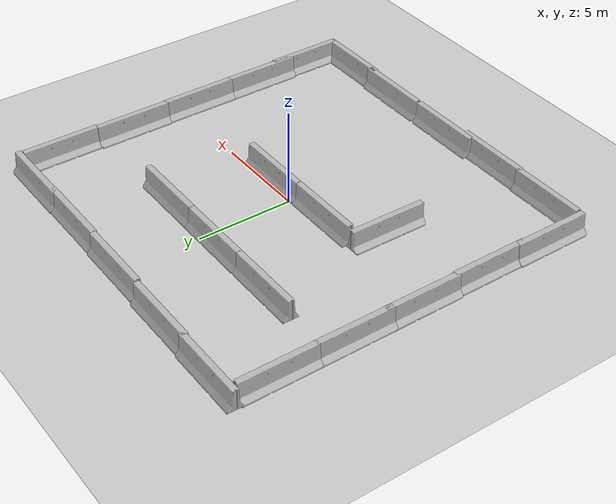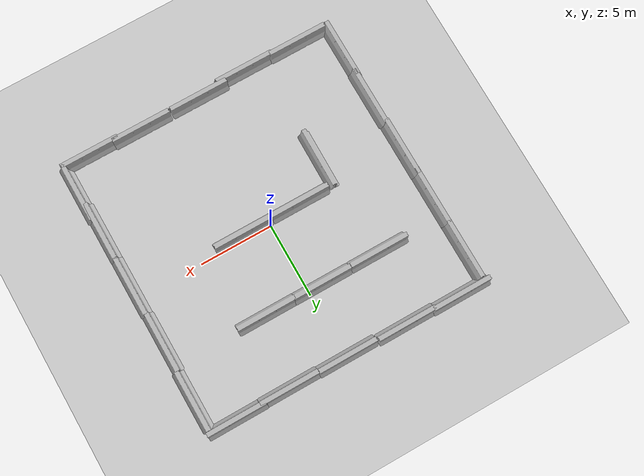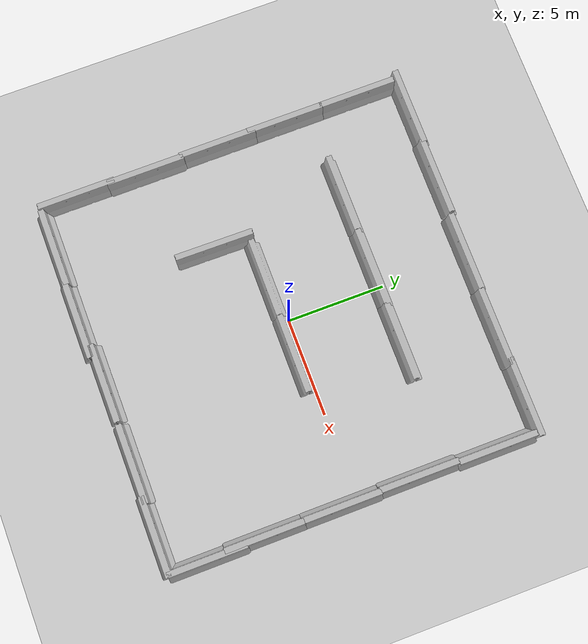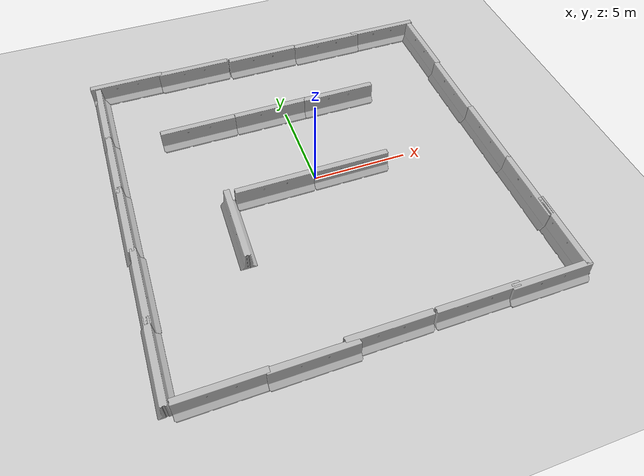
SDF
<sdf version="1.7">
 <world name="default">
  <light name="sun" type="directional">
   <pose>0 0 10 0 -0 0</pose>
   <diffuse>0.8 0.8 0.8 1</diffuse>
   <specular>0.2 0.2 0.2 1</specular>
   <attenuation>
    <range>1000</range>
    <constant>0.9</constant>
    <linear>0.01</linear>
    <quadratic>0.001</quadratic>
   </attenuation>
   <direction>-0.5 0.1 -0.9</direction>
   <spot><inner_angle>0</inner_angle><outer_angle>0</outer_angle><falloff>0</falloff></spot>
  </light>
  <model name="ground_plane">
   <static>1</static>
   <link name="link">
    <collision name="collision">
     <geometry><plane><normal>0 0 1</normal><size>100 100</size></plane></geometry>
     <surface><friction><ode><mu>100</mu><mu2>50</mu2></ode></friction></surface>
    </collision>
    <visual name="visual">
     <cast_shadows>0</cast_shadows>
     <geometry><plane><normal>0 0 1</normal><size>100 100</size></plane></geometry>
     <material>
      <script><uri>file://media/materials/scripts/gazebo.material</uri><name>Gazebo/Grey</name></script>
     </material>
    </visual>
   </link>
  </model>
  <gravity>0 0 -9.8</gravity>
  <magnetic_field>6e-06 2.3e-05 -4.2e-05</magnetic_field>
  <atmosphere type="adiabatic"/>
  <physics name="default_physics" default="0" type="ode">
   <max_step_size>0.001</max_step_size>
   <real_time_factor>1</real_time_factor>
   <real_time_update_rate>1000</real_time_update_rate>
  </physics>
  <scene><ambient>0.4 0.4 0.4 1</ambient><background>0.7 0.7 0.7 1</background><shadows>1</shadows></scene>
  <spherical_coordinates>
   <surface_model>EARTH_WGS84</surface_model>
   <latitude_deg>0</latitude_deg>
   <longitude_deg>0</longitude_deg>
   <elevation>0</elevation>
   <heading_deg>0</heading_deg>
  </spherical_coordinates>
  <model name="jersey_barrier">
   <static>1</static>
   <link name="link">
    <visual name="visual">
     <geometry><mesh><uri>model://jersey_barrier/meshes/jersey_barrier.dae</uri></mesh></geometry>
    </visual>
    <collision name="upright">
     <pose>0 0 0.5715 0 -0 0</pose>
     <geometry><box><size>4.06542 0.3063 1.143</size></box></geometry>
    </collision>
    <collision name="base">
     <pose>0 0 0.032258 0 -0 0</pose>
     <geometry><box><size>4.06542 0.8107 0.064516</size></box></geometry>
    </collision>
    <collision name="base2">
     <pose>0 0 0.1 0 -0 0</pose>
     <geometry><box><size>4.06542 0.65 0.1</size></box></geometry>
    </collision>
    <collision name="base3">
     <pose>0 0 0.2 0 -0 0</pose>
     <geometry><box><size>4.06542 0.5 0.1</size></box></geometry>
    </collision>
    <collision name="left-angle">
     <pose>0 -0.224 0.2401 0.9 -0 0</pose>
     <geometry><box><size>4.06542 0.5 0.064516</size></box></geometry>
    </collision>
    <collision name="right-angle">
     <pose>0 0.224 0.2401 -0.9 0 0</pose>
     <geometry><box><size>4.06542 0.5 0.064516</size></box></geometry>
    </collision>
   </link>
   <pose>-4.17687 9.4608 0 0 -0 0</pose>
  </model>
  <model name="jersey_barrier_clone">
   <static>1</static>
   <link name="link">
    <visual name="visual">
     <geometry><mesh><uri>model://jersey_barrier/meshes/jersey_barrier.dae</uri></mesh></geometry>
    </visual>
    <collision name="upright">
     <pose>0 0 0.5715 0 -0 0</pose>
     <geometry><box><size>4.06542 0.3063 1.143</size></box></geometry>
    </collision>
    <collision name="base">
     <pose>0 0 0.032258 0 -0 0</pose>
     <geometry><box><size>4.06542 0.8107 0.064516</size></box></geometry>
    </collision>
    <collision name="base2">
     <pose>0 0 0.1 0 -0 0</pose>
     <geometry><box><size>4.06542 0.65 0.1</size></box></geometry>
    </collision>
    <collision name="base3">
     <pose>0 0 0.2 0 -0 0</pose>
     <geometry><box><size>4.06542 0.5 0.1</size></box></geometry>
    </collision>
    <collision name="left-angle">
     <pose>0 -0.224 0.2401 0.9 -0 0</pose>
     <geometry><box><size>4.06542 0.5 0.064516</size></box></geometry>
    </collision>
    <collision name="right-angle">
     <pose>0 0.224 0.2401 -0.9 0 0</pose>
     <geometry><box><size>4.06542 0.5 0.064516</size></box></geometry>
    </collision>
   </link>
   <pose>-0.054293 9.36075 0 0 -0 0</pose>
  </model>
  <model name="jersey_barrier_clone_0">
   <static>1</static>
   <link name="link">
    <visual name="visual">
     <geometry><mesh><uri>model://jersey_barrier/meshes/jersey_barrier.dae</uri></mesh></geometry>
    </visual>
    <collision name="upright">
     <pose>0 0 0.5715 0 -0 0</pose>
     <geometry><box><size>4.06542 0.3063 1.143</size></box></geometry>
    </collision>
    <collision name="base">
     <pose>0 0 0.032258 0 -0 0</pose>
     <geometry><box><size>4.06542 0.8107 0.064516</size></box></geometry>
    </collision>
    <collision name="base2">
     <pose>0 0 0.1 0 -0 0</pose>
     <geometry><box><size>4.06542 0.65 0.1</size></box></geometry>
    </collision>
    <collision name="base3">
     <pose>0 0 0.2 0 -0 0</pose>
     <geometry><box><size>4.06542 0.5 0.1</size></box></geometry>
    </collision>
    <collision name="left-angle">
     <pose>0 -0.224 0.2401 0.9 -0 0</pose>
     <geometry><box><size>4.06542 0.5 0.064516</size></box></geometry>
    </collision>
    <collision name="right-angle">
     <pose>0 0.224 0.2401 -0.9 0 0</pose>
     <geometry><box><size>4.06542 0.5 0.064516</size></box></geometry>
    </collision>
   </link>
   <pose>3.98868 9.3074 0 0 -0 0</pose>
  </model>
  <model name="jersey_barrier_clone_1">
   <static>1</static>
   <link name="link">
    <visual name="visual">
     <geometry><mesh><uri>model://jersey_barrier/meshes/jersey_barrier.dae</uri></mesh></geometry>
    </visual>
    <collision name="upright">
     <pose>0 0 0.5715 0 -0 0</pose>
     <geometry><box><size>4.06542 0.3063 1.143</size></box></geometry>
    </collision>
    <collision name="base">
     <pose>0 0 0.032258 0 -0 0</pose>
     <geometry><box><size>4.06542 0.8107 0.064516</size></box></geometry>
    </collision>
    <collision name="base2">
     <pose>0 0 0.1 0 -0 0</pose>
     <geometry><box><size>4.06542 0.65 0.1</size></box></geometry>
    </collision>
    <collision name="base3">
     <pose>0 0 0.2 0 -0 0</pose>
     <geometry><box><size>4.06542 0.5 0.1</size></box></geometry>
    </collision>
    <collision name="left-angle">
     <pose>0 -0.224 0.2401 0.9 -0 0</pose>
     <geometry><box><size>4.06542 0.5 0.064516</size></box></geometry>
    </collision>
    <collision name="right-angle">
     <pose>0 0.224 0.2401 -0.9 0 0</pose>
     <geometry><box><size>4.06542 0.5 0.064516</size></box></geometry>
    </collision>
   </link>
   <pose>7.6423 9.33993 0 0 -0 0</pose>
  </model>
  <model name="jersey_barrier_clone_3">
   <static>1</static>
   <link name="link">
    <visual name="visual">
     <geometry><mesh><uri>model://jersey_barrier/meshes/jersey_barrier.dae</uri></mesh></geometry>
    </visual>
    <collision name="upright">
     <pose>0 0 0.5715 0 -0 0</pose>
     <geometry><box><size>4.06542 0.3063 1.143</size></box></geometry>
    </collision>
    <collision name="base">
     <pose>0 0 0.032258 0 -0 0</pose>
     <geometry><box><size>4.06542 0.8107 0.064516</size></box></geometry>
    </collision>
    <collision name="base2">
     <pose>0 0 0.1 0 -0 0</pose>
     <geometry><box><size>4.06542 0.65 0.1</size></box></geometry>
    </collision>
    <collision name="base3">
     <pose>0 0 0.2 0 -0 0</pose>
     <geometry><box><size>4.06542 0.5 0.1</size></box></geometry>
    </collision>
    <collision name="left-angle">
     <pose>0 -0.224 0.2401 0.9 -0 0</pose>
     <geometry><box><size>4.06542 0.5 0.064516</size></box></geometry>
    </collision>
    <collision name="right-angle">
     <pose>0 0.224 0.2401 -0.9 0 0</pose>
     <geometry><box><size>4.06542 0.5 0.064516</size></box></geometry>
    </collision>
   </link>
   <pose>9.4427 7.15625 0 0 0 -1.56865</pose>
  </model>
  <model name="jersey_barrier_clone_3_clone">
   <static>1</static>
   <link name="link">
    <visual name="visual">
     <geometry><mesh><uri>model://jersey_barrier/meshes/jersey_barrier.dae</uri></mesh></geometry>
    </visual>
    <collision name="upright">
     <pose>0 0 0.5715 0 -0 0</pose>
     <geometry><box><size>4.06542 0.3063 1.143</size></box></geometry>
    </collision>
    <collision name="base">
     <pose>0 0 0.032258 0 -0 0</pose>
     <geometry><box><size>4.06542 0.8107 0.064516</size></box></geometry>
    </collision>
    <collision name="base2">
     <pose>0 0 0.1 0 -0 0</pose>
     <geometry><box><size>4.06542 0.65 0.1</size></box></geometry>
    </collision>
    <collision name="base3">
     <pose>0 0 0.2 0 -0 0</pose>
     <geometry><box><size>4.06542 0.5 0.1</size></box></geometry>
    </collision>
    <collision name="left-angle">
     <pose>0 -0.224 0.2401 0.9 -0 0</pose>
     <geometry><box><size>4.06542 0.5 0.064516</size></box></geometry>
    </collision>
    <collision name="right-angle">
     <pose>0 0.224 0.2401 -0.9 0 0</pose>
     <geometry><box><size>4.06542 0.5 0.064516</size></box></geometry>
    </collision>
   </link>
   <pose>9.36884 3.13056 0 0 0 -1.56865</pose>
  </model>
  <model name="jersey_barrier_clone_3_clone_0">
   <static>1</static>
   <link name="link">
    <visual name="visual">
     <geometry><mesh><uri>model://jersey_barrier/meshes/jersey_barrier.dae</uri></mesh></geometry>
    </visual>
    <collision name="upright">
     <pose>0 0 0.5715 0 -0 0</pose>
     <geometry><box><size>4.06542 0.3063 1.143</size></box></geometry>
    </collision>
    <collision name="base">
     <pose>0 0 0.032258 0 -0 0</pose>
     <geometry><box><size>4.06542 0.8107 0.064516</size></box></geometry>
    </collision>
    <collision name="base2">
     <pose>0 0 0.1 0 -0 0</pose>
     <geometry><box><size>4.06542 0.65 0.1</size></box></geometry>
    </collision>
    <collision name="base3">
     <pose>0 0 0.2 0 -0 0</pose>
     <geometry><box><size>4.06542 0.5 0.1</size></box></geometry>
    </collision>
    <collision name="left-angle">
     <pose>0 -0.224 0.2401 0.9 -0 0</pose>
     <geometry><box><size>4.06542 0.5 0.064516</size></box></geometry>
    </collision>
    <collision name="right-angle">
     <pose>0 0.224 0.2401 -0.9 0 0</pose>
     <geometry><box><size>4.06542 0.5 0.064516</size></box></geometry>
    </collision>
   </link>
   <pose>9.42767 -0.84043 0 0 0 -1.56865</pose>
  </model>
  <model name="jersey_barrier_clone_3_clone_1">
   <static>1</static>
   <link name="link">
    <visual name="visual">
     <geometry><mesh><uri>model://jersey_barrier/meshes/jersey_barrier.dae</uri></mesh></geometry>
    </visual>
    <collision name="upright">
     <pose>0 0 0.5715 0 -0 0</pose>
     <geometry><box><size>4.06542 0.3063 1.143</size></box></geometry>
    </collision>
    <collision name="base">
     <pose>0 0 0.032258 0 -0 0</pose>
     <geometry><box><size>4.06542 0.8107 0.064516</size></box></geometry>
    </collision>
    <collision name="base2">
     <pose>0 0 0.1 0 -0 0</pose>
     <geometry><box><size>4.06542 0.65 0.1</size></box></geometry>
    </collision>
    <collision name="base3">
     <pose>0 0 0.2 0 -0 0</pose>
     <geometry><box><size>4.06542 0.5 0.1</size></box></geometry>
    </collision>
    <collision name="left-angle">
     <pose>0 -0.224 0.2401 0.9 -0 0</pose>
     <geometry><box><size>4.06542 0.5 0.064516</size></box></geometry>
    </collision>
    <collision name="right-angle">
     <pose>0 0.224 0.2401 -0.9 0 0</pose>
     <geometry><box><size>4.06542 0.5 0.064516</size></box></geometry>
    </collision>
   </link>
   <pose>9.44587 -4.75641 0 0 0 -1.56865</pose>
  </model>
  <model name="jersey_barrier_clone_2_clone">
   <static>1</static>
   <link name="link">
    <visual name="visual">
     <geometry><mesh><uri>model://jersey_barrier/meshes/jersey_barrier.dae</uri></mesh></geometry>
    </visual>
    <collision name="upright">
     <pose>0 0 0.5715 0 -0 0</pose>
     <geometry><box><size>4.06542 0.3063 1.143</size></box></geometry>
    </collision>
    <collision name="base">
     <pose>0 0 0.032258 0 -0 0</pose>
     <geometry><box><size>4.06542 0.8107 0.064516</size></box></geometry>
    </collision>
    <collision name="base2">
     <pose>0 0 0.1 0 -0 0</pose>
     <geometry><box><size>4.06542 0.65 0.1</size></box></geometry>
    </collision>
    <collision name="base3">
     <pose>0 0 0.2 0 -0 0</pose>
     <geometry><box><size>4.06542 0.5 0.1</size></box></geometry>
    </collision>
    <collision name="left-angle">
     <pose>0 -0.224 0.2401 0.9 -0 0</pose>
     <geometry><box><size>4.06542 0.5 0.064516</size></box></geometry>
    </collision>
    <collision name="right-angle">
     <pose>0 0.224 0.2401 -0.9 0 0</pose>
     <geometry><box><size>4.06542 0.5 0.064516</size></box></geometry>
    </collision>
   </link>
   <pose>7.66714 -9.59835 0 0 -0 0</pose>
  </model>
  <model name="jersey_barrier_clone_2_clone_0">
   <static>1</static>
   <link name="link">
    <visual name="visual">
     <geometry><mesh><uri>model://jersey_barrier/meshes/jersey_barrier.dae</uri></mesh></geometry>
    </visual>
    <collision name="upright">
     <pose>0 0 0.5715 0 -0 0</pose>
     <geometry><box><size>4.06542 0.3063 1.143</size></box></geometry>
    </collision>
    <collision name="base">
     <pose>0 0 0.032258 0 -0 0</pose>
     <geometry><box><size>4.06542 0.8107 0.064516</size></box></geometry>
    </collision>
    <collision name="base2">
     <pose>0 0 0.1 0 -0 0</pose>
     <geometry><box><size>4.06542 0.65 0.1</size></box></geometry>
    </collision>
    <collision name="base3">
     <pose>0 0 0.2 0 -0 0</pose>
     <geometry><box><size>4.06542 0.5 0.1</size></box></geometry>
    </collision>
    <collision name="left-angle">
     <pose>0 -0.224 0.2401 0.9 -0 0</pose>
     <geometry><box><size>4.06542 0.5 0.064516</size></box></geometry>
    </collision>
    <collision name="right-angle">
     <pose>0 0.224 0.2401 -0.9 0 0</pose>
     <geometry><box><size>4.06542 0.5 0.064516</size></box></geometry>
    </collision>
   </link>
   <pose>4.06577 -9.50928 0 0 -0 0</pose>
  </model>
  <model name="jersey_barrier_clone_2_clone_1">
   <static>1</static>
   <link name="link">
    <visual name="visual">
     <geometry><mesh><uri>model://jersey_barrier/meshes/jersey_barrier.dae</uri></mesh></geometry>
    </visual>
    <collision name="upright">
     <pose>0 0 0.5715 0 -0 0</pose>
     <geometry><box><size>4.06542 0.3063 1.143</size></box></geometry>
    </collision>
    <collision name="base">
     <pose>0 0 0.032258 0 -0 0</pose>
     <geometry><box><size>4.06542 0.8107 0.064516</size></box></geometry>
    </collision>
    <collision name="base2">
     <pose>0 0 0.1 0 -0 0</pose>
     <geometry><box><size>4.06542 0.65 0.1</size></box></geometry>
    </collision>
    <collision name="base3">
     <pose>0 0 0.2 0 -0 0</pose>
     <geometry><box><size>4.06542 0.5 0.1</size></box></geometry>
    </collision>
    <collision name="left-angle">
     <pose>0 -0.224 0.2401 0.9 -0 0</pose>
     <geometry><box><size>4.06542 0.5 0.064516</size></box></geometry>
    </collision>
    <collision name="right-angle">
     <pose>0 0.224 0.2401 -0.9 0 0</pose>
     <geometry><box><size>4.06542 0.5 0.064516</size></box></geometry>
    </collision>
   </link>
   <pose>-0.076635 -9.50852 0 0 -0 0</pose>
  </model>
  <model name="jersey_barrier_clone_2_clone_2">
   <static>1</static>
   <link name="link">
    <visual name="visual">
     <geometry><mesh><uri>model://jersey_barrier/meshes/jersey_barrier.dae</uri></mesh></geometry>
    </visual>
    <collision name="upright">
     <pose>0 0 0.5715 0 -0 0</pose>
     <geometry><box><size>4.06542 0.3063 1.143</size></box></geometry>
    </collision>
    <collision name="base">
     <pose>0 0 0.032258 0 -0 0</pose>
     <geometry><box><size>4.06542 0.8107 0.064516</size></box></geometry>
    </collision>
    <collision name="base2">
     <pose>0 0 0.1 0 -0 0</pose>
     <geometry><box><size>4.06542 0.65 0.1</size></box></geometry>
    </collision>
    <collision name="base3">
     <pose>0 0 0.2 0 -0 0</pose>
     <geometry><box><size>4.06542 0.5 0.1</size></box></geometry>
    </collision>
    <collision name="left-angle">
     <pose>0 -0.224 0.2401 0.9 -0 0</pose>
     <geometry><box><size>4.06542 0.5 0.064516</size></box></geometry>
    </collision>
    <collision name="right-angle">
     <pose>0 0.224 0.2401 -0.9 0 0</pose>
     <geometry><box><size>4.06542 0.5 0.064516</size></box></geometry>
    </collision>
   </link>
   <pose>-7.34735 -9.65079 0 0 -0 0</pose>
  </model>
  <model name="jersey_barrier_clone_3_clone_1_clone">
   <static>1</static>
   <link name="link">
    <visual name="visual">
     <geometry><mesh><uri>model://jersey_barrier/meshes/jersey_barrier.dae</uri></mesh></geometry>
    </visual>
    <collision name="upright">
     <pose>0 0 0.5715 0 -0 0</pose>
     <geometry><box><size>4.06542 0.3063 1.143</size></box></geometry>
    </collision>
    <collision name="base">
     <pose>0 0 0.032258 0 -0 0</pose>
     <geometry><box><size>4.06542 0.8107 0.064516</size></box></geometry>
    </collision>
    <collision name="base2">
     <pose>0 0 0.1 0 -0 0</pose>
     <geometry><box><size>4.06542 0.65 0.1</size></box></geometry>
    </collision>
    <collision name="base3">
     <pose>0 0 0.2 0 -0 0</pose>
     <geometry><box><size>4.06542 0.5 0.1</size></box></geometry>
    </collision>
    <collision name="left-angle">
     <pose>0 -0.224 0.2401 0.9 -0 0</pose>
     <geometry><box><size>4.06542 0.5 0.064516</size></box></geometry>
    </collision>
    <collision name="right-angle">
     <pose>0 0.224 0.2401 -0.9 0 0</pose>
     <geometry><box><size>4.06542 0.5 0.064516</size></box></geometry>
    </collision>
   </link>
   <pose>-9.54768 -4.10101 0 0 0 -1.56865</pose>
  </model>
  <model name="jersey_barrier_clone_3_clone_1_clone_0">
   <static>1</static>
   <link name="link">
    <visual name="visual">
     <geometry><mesh><uri>model://jersey_barrier/meshes/jersey_barrier.dae</uri></mesh></geometry>
    </visual>
    <collision name="upright">
     <pose>0 0 0.5715 0 -0 0</pose>
     <geometry><box><size>4.06542 0.3063 1.143</size></box></geometry>
    </collision>
    <collision name="base">
     <pose>0 0 0.032258 0 -0 0</pose>
     <geometry><box><size>4.06542 0.8107 0.064516</size></box></geometry>
    </collision>
    <collision name="base2">
     <pose>0 0 0.1 0 -0 0</pose>
     <geometry><box><size>4.06542 0.65 0.1</size></box></geometry>
    </collision>
    <collision name="base3">
     <pose>0 0 0.2 0 -0 0</pose>
     <geometry><box><size>4.06542 0.5 0.1</size></box></geometry>
    </collision>
    <collision name="left-angle">
     <pose>0 -0.224 0.2401 0.9 -0 0</pose>
     <geometry><box><size>4.06542 0.5 0.064516</size></box></geometry>
    </collision>
    <collision name="right-angle">
     <pose>0 0.224 0.2401 -0.9 0 0</pose>
     <geometry><box><size>4.06542 0.5 0.064516</size></box></geometry>
    </collision>
   </link>
   <pose>-9.62664 -0.240383 0 0 0 -1.56865</pose>
  </model>
  <model name="jersey_barrier_clone_3_clone_1_clone_1">
   <static>1</static>
   <link name="link">
    <visual name="visual">
     <geometry><mesh><uri>model://jersey_barrier/meshes/jersey_barrier.dae</uri></mesh></geometry>
    </visual>
    <collision name="upright">
     <pose>0 0 0.5715 0 -0 0</pose>
     <geometry><box><size>4.06542 0.3063 1.143</size></box></geometry>
    </collision>
    <collision name="base">
     <pose>0 0 0.032258 0 -0 0</pose>
     <geometry><box><size>4.06542 0.8107 0.064516</size></box></geometry>
    </collision>
    <collision name="base2">
     <pose>0 0 0.1 0 -0 0</pose>
     <geometry><box><size>4.06542 0.65 0.1</size></box></geometry>
    </collision>
    <collision name="base3">
     <pose>0 0 0.2 0 -0 0</pose>
     <geometry><box><size>4.06542 0.5 0.1</size></box></geometry>
    </collision>
    <collision name="left-angle">
     <pose>0 -0.224 0.2401 0.9 -0 0</pose>
     <geometry><box><size>4.06542 0.5 0.064516</size></box></geometry>
    </collision>
    <collision name="right-angle">
     <pose>0 0.224 0.2401 -0.9 0 0</pose>
     <geometry><box><size>4.06542 0.5 0.064516</size></box></geometry>
    </collision>
   </link>
   <pose>-9.64604 3.37731 0 0 0 -1.56865</pose>
  </model>
  <model name="jersey_barrier_clone_3_clone_1_clone_2">
   <static>1</static>
   <link name="link">
    <visual name="visual">
     <geometry><mesh><uri>model://jersey_barrier/meshes/jersey_barrier.dae</uri></mesh></geometry>
    </visual>
    <collision name="upright">
     <pose>0 0 0.5715 0 -0 0</pose>
     <geometry><box><size>4.06542 0.3063 1.143</size></box></geometry>
    </collision>
    <collision name="base">
     <pose>0 0 0.032258 0 -0 0</pose>
     <geometry><box><size>4.06542 0.8107 0.064516</size></box></geometry>
    </collision>
    <collision name="base2">
     <pose>0 0 0.1 0 -0 0</pose>
     <geometry><box><size>4.06542 0.65 0.1</size></box></geometry>
    </collision>
    <collision name="base3">
     <pose>0 0 0.2 0 -0 0</pose>
     <geometry><box><size>4.06542 0.5 0.1</size></box></geometry>
    </collision>
    <collision name="left-angle">
     <pose>0 -0.224 0.2401 0.9 -0 0</pose>
     <geometry><box><size>4.06542 0.5 0.064516</size></box></geometry>
    </collision>
    <collision name="right-angle">
     <pose>0 0.224 0.2401 -0.9 0 0</pose>
     <geometry><box><size>4.06542 0.5 0.064516</size></box></geometry>
    </collision>
   </link>
   <pose>-9.65968 7.27215 0 0 0 -1.56865</pose>
  </model>
  <model name="jersey_barrier_0">
   <static>1</static>
   <link name="link">
    <visual name="visual">
     <geometry><mesh><uri>model://jersey_barrier/meshes/jersey_barrier.dae</uri></mesh></geometry>
    </visual>
    <collision name="upright">
     <pose>0 0 0.5715 0 -0 0</pose>
     <geometry><box><size>4.06542 0.3063 1.143</size></box></geometry>
    </collision>
    <collision name="base">
     <pose>0 0 0.032258 0 -0 0</pose>
     <geometry><box><size>4.06542 0.8107 0.064516</size></box></geometry>
    </collision>
    <collision name="base2">
     <pose>0 0 0.1 0 -0 0</pose>
     <geometry><box><size>4.06542 0.65 0.1</size></box></geometry>
    </collision>
    <collision name="base3">
     <pose>0 0 0.2 0 -0 0</pose>
     <geometry><box><size>4.06542 0.5 0.1</size></box></geometry>
    </collision>
    <collision name="left-angle">
     <pose>0 -0.224 0.2401 0.9 -0 0</pose>
     <geometry><box><size>4.06542 0.5 0.064516</size></box></geometry>
    </collision>
    <collision name="right-angle">
     <pose>0 0.224 0.2401 -0.9 0 0</pose>
     <geometry><box><size>4.06542 0.5 0.064516</size></box></geometry>
    </collision>
   </link>
   <pose>-4.97429 4.73074 0 0 -0 0</pose>
  </model>
  <model name="jersey_barrier_0_clone">
   <static>1</static>
   <link name="link">
    <visual name="visual">
     <geometry><mesh><uri>model://jersey_barrier/meshes/jersey_barrier.dae</uri></mesh></geometry>
    </visual>
    <collision name="upright">
     <pose>0 0 0.5715 0 -0 0</pose>
     <geometry><box><size>4.06542 0.3063 1.143</size></box></geometry>
    </collision>
    <collision name="base">
     <pose>0 0 0.032258 0 -0 0</pose>
     <geometry><box><size>4.06542 0.8107 0.064516</size></box></geometry>
    </collision>
    <collision name="base2">
     <pose>0 0 0.1 0 -0 0</pose>
     <geometry><box><size>4.06542 0.65 0.1</size></box></geometry>
    </collision>
    <collision name="base3">
     <pose>0 0 0.2 0 -0 0</pose>
     <geometry><box><size>4.06542 0.5 0.1</size></box></geometry>
    </collision>
    <collision name="left-angle">
     <pose>0 -0.224 0.2401 0.9 -0 0</pose>
     <geometry><box><size>4.06542 0.5 0.064516</size></box></geometry>
    </collision>
    <collision name="right-angle">
     <pose>0 0.224 0.2401 -0.9 0 0</pose>
     <geometry><box><size>4.06542 0.5 0.064516</size></box></geometry>
    </collision>
   </link>
   <pose>-0.93635 4.73131 0 0 -0 0</pose>
  </model>
  <model name="jersey_barrier_0_clone_0">
   <static>1</static>
   <link name="link">
    <visual name="visual">
     <geometry><mesh><uri>model://jersey_barrier/meshes/jersey_barrier.dae</uri></mesh></geometry>
    </visual>
    <collision name="upright">
     <pose>0 0 0.5715 0 -0 0</pose>
     <geometry><box><size>4.06542 0.3063 1.143</size></box></geometry>
    </collision>
    <collision name="base">
     <pose>0 0 0.032258 0 -0 0</pose>
     <geometry><box><size>4.06542 0.8107 0.064516</size></box></geometry>
    </collision>
    <collision name="base2">
     <pose>0 0 0.1 0 -0 0</pose>
     <geometry><box><size>4.06542 0.65 0.1</size></box></geometry>
    </collision>
    <collision name="base3">
     <pose>0 0 0.2 0 -0 0</pose>
     <geometry><box><size>4.06542 0.5 0.1</size></box></geometry>
    </collision>
    <collision name="left-angle">
     <pose>0 -0.224 0.2401 0.9 -0 0</pose>
     <geometry><box><size>4.06542 0.5 0.064516</size></box></geometry>
    </collision>
    <collision name="right-angle">
     <pose>0 0.224 0.2401 -0.9 0 0</pose>
     <geometry><box><size>4.06542 0.5 0.064516</size></box></geometry>
    </collision>
   </link>
   <pose>2.99134 4.7208 0 0 -0 0</pose>
  </model>
  <model name="jersey_barrier_0_clone_1">
   <static>1</static>
   <link name="link">
    <visual name="visual">
     <geometry><mesh><uri>model://jersey_barrier/meshes/jersey_barrier.dae</uri></mesh></geometry>
    </visual>
    <collision name="upright">
     <pose>0 0 0.5715 0 -0 0</pose>
     <geometry><box><size>4.06542 0.3063 1.143</size></box></geometry>
    </collision>
    <collision name="base">
     <pose>0 0 0.032258 0 -0 0</pose>
     <geometry><box><size>4.06542 0.8107 0.064516</size></box></geometry>
    </collision>
    <collision name="base2">
     <pose>0 0 0.1 0 -0 0</pose>
     <geometry><box><size>4.06542 0.65 0.1</size></box></geometry>
    </collision>
    <collision name="base3">
     <pose>0 0 0.2 0 -0 0</pose>
     <geometry><box><size>4.06542 0.5 0.1</size></box></geometry>
    </collision>
    <collision name="left-angle">
     <pose>0 -0.224 0.2401 0.9 -0 0</pose>
     <geometry><box><size>4.06542 0.5 0.064516</size></box></geometry>
    </collision>
    <collision name="right-angle">
     <pose>0 0.224 0.2401 -0.9 0 0</pose>
     <geometry><box><size>4.06542 0.5 0.064516</size></box></geometry>
    </collision>
   </link>
   <pose>-2.28125 -0.396276 0 0 -0 0</pose>
  </model>
  <model name="jersey_barrier_0_clone_1_clone">
   <static>1</static>
   <link name="link">
    <visual name="visual">
     <geometry><mesh><uri>model://jersey_barrier/meshes/jersey_barrier.dae</uri></mesh></geometry>
    </visual>
    <collision name="upright">
     <pose>0 0 0.5715 0 -0 0</pose>
     <geometry><box><size>4.06542 0.3063 1.143</size></box></geometry>
    </collision>
    <collision name="base">
     <pose>0 0 0.032258 0 -0 0</pose>
     <geometry><box><size>4.06542 0.8107 0.064516</size></box></geometry>
    </collision>
    <collision name="base2">
     <pose>0 0 0.1 0 -0 0</pose>
     <geometry><box><size>4.06542 0.65 0.1</size></box></geometry>
    </collision>
    <collision name="base3">
     <pose>0 0 0.2 0 -0 0</pose>
     <geometry><box><size>4.06542 0.5 0.1</size></box></geometry>
    </collision>
    <collision name="left-angle">
     <pose>0 -0.224 0.2401 0.9 -0 0</pose>
     <geometry><box><size>4.06542 0.5 0.064516</size></box></geometry>
    </collision>
    <collision name="right-angle">
     <pose>0 0.224 0.2401 -0.9 0 0</pose>
     <geometry><box><size>4.06542 0.5 0.064516</size></box></geometry>
    </collision>
   </link>
   <pose>1.76519 -0.393386 0 0 -0 0</pose>
  </model>
  <model name="jersey_barrier_0_clone_1_clone_clone">
   <static>1</static>
   <link name="link">
    <visual name="visual">
     <geometry><mesh><uri>model://jersey_barrier/meshes/jersey_barrier.dae</uri></mesh></geometry>
    </visual>
    <collision name="upright">
     <pose>0 0 0.5715 0 -0 0</pose>
     <geometry><box><size>4.06542 0.3063 1.143</size></box></geometry>
    </collision>
    <collision name="base">
     <pose>0 0 0.032258 0 -0 0</pose>
     <geometry><box><size>4.06542 0.8107 0.064516</size></box></geometry>
    </collision>
    <collision name="base2">
     <pose>0 0 0.1 0 -0 0</pose>
     <geometry><box><size>4.06542 0.65 0.1</size></box></geometry>
    </collision>
    <collision name="base3">
     <pose>0 0 0.2 0 -0 0</pose>
     <geometry><box><size>4.06542 0.5 0.1</size></box></geometry>
    </collision>
    <collision name="left-angle">
     <pose>0 -0.224 0.2401 0.9 -0 0</pose>
     <geometry><box><size>4.06542 0.5 0.064516</size></box></geometry>
    </collision>
    <collision name="right-angle">
     <pose>0 0.224 0.2401 -0.9 0 0</pose>
     <geometry><box><size>4.06542 0.5 0.064516</size></box></geometry>
    </collision>
   </link>
   <pose>-4.70062 -2.1894 0 0 0 -1.58136</pose>
  </model>
  <model name="coke_can">
   <link name="link">
    <inertial>
     <pose>-0.01 -0.012 0.15 0 -0 0</pose>
     <mass>0.39</mass>
     <inertia><ixx>0.00058</ixx><ixy>0</ixy><ixz>0</ixz><iyy>0.00058</iyy><iyz>0</iyz><izz>0.00019</izz></inertia>
    </inertial>
    <collision name="collision">
     <pose>0 0 -0.46 0 -0 0</pose>
     <geometry><mesh><uri>model://coke_can/meshes/coke_can.dae</uri></mesh></geometry>
     <surface>
      <friction><ode><mu>1</mu><mu2>1</mu2></ode></friction>
      <contact><ode><kp>1e+07</kp><kd>1</kd><min_depth>0.001</min_depth><max_vel>0.1</max_vel></ode></contact>
     </surface>
    </collision>
    <visual name="visual">
     <pose>0 0 -0.46 0 -0 0</pose>
     <geometry><mesh><uri>model://coke_can/meshes/coke_can.dae</uri></mesh></geometry>
    </visual>
   </link>
   <pose>-3.00586 -2.50791 -0.004997 -0.056528 0.006762 -0.00043</pose>
  </model>
  <model name="jersey_barrier_clone_2">
   <static>1</static>
   <link name="link">
    <visual name="visual">
     <geometry><mesh><uri>model://jersey_barrier/meshes/jersey_barrier.dae</uri></mesh></geometry>
    </visual>
    <collision name="upright">
     <pose>0 0 0.5715 0 -0 0</pose>
     <geometry><box><size>4.06542 0.3063 1.143</size></box></geometry>
    </collision>
    <collision name="base">
     <pose>0 0 0.032258 0 -0 0</pose>
     <geometry><box><size>4.06542 0.8107 0.064516</size></box></geometry>
    </collision>
    <collision name="base2">
     <pose>0 0 0.1 0 -0 0</pose>
     <geometry><box><size>4.06542 0.65 0.1</size></box></geometry>
    </collision>
    <collision name="base3">
     <pose>0 0 0.2 0 -0 0</pose>
     <geometry><box><size>4.06542 0.5 0.1</size></box></geometry>
    </collision>
    <collision name="left-angle">
     <pose>0 -0.224 0.2401 0.9 -0 0</pose>
     <geometry><box><size>4.06542 0.5 0.064516</size></box></geometry>
    </collision>
    <collision name="right-angle">
     <pose>0 0.224 0.2401 -0.9 0 0</pose>
     <geometry><box><size>4.06542 0.5 0.064516</size></box></geometry>
    </collision>
   </link>
   <pose>-8.04352 9.52651 0 0 -0 0</pose>
  </model>
  <model name="jersey_barrier_clone_3_clone_1_clone_3">
   <static>1</static>
   <link name="link">
    <visual name="visual">
     <geometry><mesh><uri>model://jersey_barrier/meshes/jersey_barrier.dae</uri></mesh></geometry>
    </visual>
    <collision name="upright">
     <pose>0 0 0.5715 0 -0 0</pose>
     <geometry><box><size>4.06542 0.3063 1.143</size></box></geometry>
    </collision>
    <collision name="base">
     <pose>0 0 0.032258 0 -0 0</pose>
     <geometry><box><size>4.06542 0.8107 0.064516</size></box></geometry>
    </collision>
    <collision name="base2">
     <pose>0 0 0.1 0 -0 0</pose>
     <geometry><box><size>4.06542 0.65 0.1</size></box></geometry>
    </collision>
    <collision name="base3">
     <pose>0 0 0.2 0 -0 0</pose>
     <geometry><box><size>4.06542 0.5 0.1</size></box></geometry>
    </collision>
    <collision name="left-angle">
     <pose>0 -0.224 0.2401 0.9 -0 0</pose>
     <geometry><box><size>4.06542 0.5 0.064516</size></box></geometry>
    </collision>
    <collision name="right-angle">
     <pose>0 0.224 0.2401 -0.9 0 0</pose>
     <geometry><box><size>4.06542 0.5 0.064516</size></box></geometry>
    </collision>
   </link>
   <pose>9.54176 -7.66847 0 0 0 -1.56865</pose>
  </model>
  <model name="jersey_barrier_clone_3_clone_1_clone_clone">
   <static>1</static>
   <link name="link">
    <visual name="visual">
     <geometry><mesh><uri>model://jersey_barrier/meshes/jersey_barrier.dae</uri></mesh></geometry>
    </visual>
    <collision name="upright">
     <pose>0 0 0.5715 0 -0 0</pose>
     <geometry><box><size>4.06542 0.3063 1.143</size></box></geometry>
    </collision>
    <collision name="base">
     <pose>0 0 0.032258 0 -0 0</pose>
     <geometry><box><size>4.06542 0.8107 0.064516</size></box></geometry>
    </collision>
    <collision name="base2">
     <pose>0 0 0.1 0 -0 0</pose>
     <geometry><box><size>4.06542 0.65 0.1</size></box></geometry>
    </collision>
    <collision name="base3">
     <pose>0 0 0.2 0 -0 0</pose>
     <geometry><box><size>4.06542 0.5 0.1</size></box></geometry>
    </collision>
    <collision name="left-angle">
     <pose>0 -0.224 0.2401 0.9 -0 0</pose>
     <geometry><box><size>4.06542 0.5 0.064516</size></box></geometry>
    </collision>
    <collision name="right-angle">
     <pose>0 0.224 0.2401 -0.9 0 0</pose>
     <geometry><box><size>4.06542 0.5 0.064516</size></box></geometry>
    </collision>
   </link>
   <pose>-9.5848 -7.7282 0 0 0 -1.56865</pose>
  </model>
  <model name="jersey_barrier_clone_2_clone_2_clone">
   <static>1</static>
   <link name="link">
    <visual name="visual">
     <geometry><mesh><uri>model://jersey_barrier/meshes/jersey_barrier.dae</uri></mesh></geometry>
    </visual>
    <collision name="upright">
     <pose>0 0 0.5715 0 -0 0</pose>
     <geometry><box><size>4.06542 0.3063 1.143</size></box></geometry>
    </collision>
    <collision name="base">
     <pose>0 0 0.032258 0 -0 0</pose>
     <geometry><box><size>4.06542 0.8107 0.064516</size></box></geometry>
    </collision>
    <collision name="base2">
     <pose>0 0 0.1 0 -0 0</pose>
     <geometry><box><size>4.06542 0.65 0.1</size></box></geometry>
    </collision>
    <collision name="base3">
     <pose>0 0 0.2 0 -0 0</pose>
     <geometry><box><size>4.06542 0.5 0.1</size></box></geometry>
    </collision>
    <collision name="left-angle">
     <pose>0 -0.224 0.2401 0.9 -0 0</pose>
     <geometry><box><size>4.06542 0.5 0.064516</size></box></geometry>
    </collision>
    <collision name="right-angle">
     <pose>0 0.224 0.2401 -0.9 0 0</pose>
     <geometry><box><size>4.06542 0.5 0.064516</size></box></geometry>
    </collision>
   </link>
   <pose>-3.48793 -9.70486 0 0 -0 0</pose>
  </model>
 </world>
</sdf>
